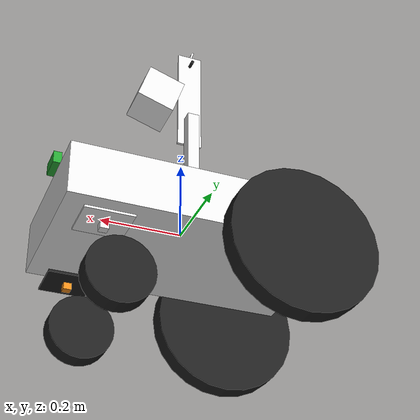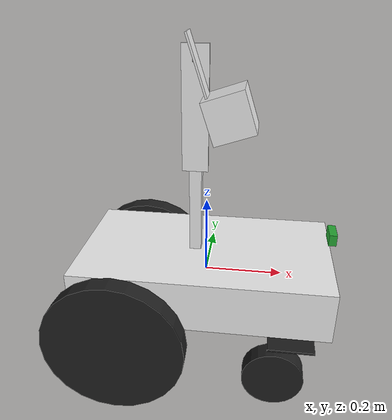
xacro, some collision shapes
<?xml version="1.0"?>

<!--defining a namespace and the robot name are mandatory-->
<robot name="Jimmy" xmlns:xacro="jimmy_description_xacro_namespace">

  <!--====================PART #0 - IMPORT FROM OTHER FILES==================-->
  <!-- Import Rviz colors -->
  <xacro:include filename="$(find jimmy_description)/urdf/materials.xacro" />

  <!-- Import all Gazebo related items from jimmy.gazebo file -->
  <xacro:include filename="$(find jimmy_description)/urdf/jimmy.gazebo" />
  <!--==============END of PART #0 - IMPORT FROM OTHER FILES=================-->

  <!--=========================PART #1 - CONSTANTS===========================-->
  <!-- all the robot constants are defined in this section. Values are meters-->
  <xacro:property name="pi" value="3.1415926535897931" />

  <!--base link values-->
  <xacro:property name="base_link_length_width_height" value="0.650 0.381 0.132" />
  <xacro:property name="base_link_length" value="0.650" />
  <xacro:property name="base_link_width" value="0.381" />
  <xacro:property name="base_link_height" value="0.132" />
  <xacro:property name="base_link_mass" value="25"/> <!--25 kg-->

  <!--left and right drive wheel values (both are same size)-->
  <xacro:property name="drive_wheel_length" value="0.049" />
  <xacro:property name="drive_wheel_radius" value="0.181" />
  <xacro:property name="drive_wheel_mass" value="2"/> <!--2 kg-->

  <!--left and right castor mount plate size (both are same size)-->
  <xacro:property name="castor_mount_link_length_width_height" value="0.1145 0.10 0.0057" />
  <xacro:property name="castor_mount_link_length" value="0.1145" />
  <xacro:property name="castor_mount_link_width" value="0.10" />
  <xacro:property name="castor_mount_link_height" value="0.0057" />
  <xacro:property name="castor_mount_link_mass" value="0.25"/> <!--0.25 kg-->

  <!--dummy link to give castors rotation about the Z axis-->
  <xacro:property name="castor_mount_dummy_link_length" value="0.02" />
  <xacro:property name="castor_mount_dummy_link_width" value="0.02" />
  <xacro:property name="castor_mount_dummy_link_height" value="0.02" />
  <xacro:property name="castor_mount_dummy_link_mass" value="2.0"/> <!--0.25 kg-->

  <!-- left and right castor wheels (both are same size) -->
  <xacro:property name="castor_wheel_length" value="0.049" />
  <xacro:property name="castor_wheel_radius" value="0.07925" />
  <xacro:property name="castor_wheel_mass" value="2"/> <!--2 kg-->

  <!--The dimensions of the aluminum extrusion holding the entire lms system -->
  <xacro:property name="lms_structural_extrusion_link_length_width_height" value="0.03 0.03 0.425" />
  <xacro:property name="lms_structural_extrusion_link_length" value="0.03" />
  <xacro:property name="lms_structural_extrusion_link_width" value="0.03" />
  <xacro:property name="lms_structural_extrusion_link_height" value="0.425" />
  <xacro:property name="lms_structural_extrusion_link_mass" value="3"/> <!--3 kg-->

  <!-- Hokuyo base plate (mounts to lms_structural_extrution, has stepper motor,
       and the limit switch)-->
  <xacro:property name="hokuyo_base_plate_link_length" value="0.0635" /> <!--meters-->
  <xacro:property name="hokuyo_base_plate_link_width" value="0.00635" />
  <xacro:property name="hokuyo_base_plate_link_height" value="0.2921" />
  <xacro:property name="hokuyo_base_plate_link_mass" value="1"/> <!--3 kg-->

  <!-- To make everything easier I am including the stepper motor shaft-->
  <!--dimensions of shaft which is tuned by A.M.P. servo motor               -->
  <xacro:property name="stepper_motor_shaft_length" value="0.05" /> <!--5cm-->
  <xacro:property name="stepper_motor_shaft_radius" value="0.004" /> <!--8mm-->
  <xacro:property name="stepper_motor_shaft_mass" value="0.25"/> <!-- kg-->

  <!-- The hokuyo lidar is mounted to this plate. This plate is moved by
       the stepper motor.-->
  <xacro:property name="hokuyo_nodding_link_length" value="0.217" /> <!--meters-->
  <xacro:property name="hokuyo_nodding_link_width" value="0.051" />
  <xacro:property name="hokuyo_nodding_link_height" value="0.0047625" />
  <xacro:property name="hokuyo_nodding_link_mass" value="0.5"/> <!--kg-->

  <!--Box representing a collision space for the actual Hokuyo. according to    -->
  <!--docs, using meshes for collisions is very computationally intensive, so-->
  <!--it is much better to define collision space as a regular box.          -->
  <xacro:property name="hokuyo_collision_space_length_width_height" value="0.10 0.10 0.10" />

  <!--define some camera properties-->
  <xacro:property name="camera_link_length" value="0.02"/> <!--longest edge-->
  <xacro:property name="camera_link_height" value="0.03"/> <!--second longest edge-->
  <xacro:property name="camera_link_width" value="0.06"/> <!--smallest edge-->
  <xacro:property name="camera_link_mass" value="0.1"/>

  <!--Friction for joints-->
  <xacro:property name="friction_val" value="0.35"/>

  <!--======================END ofPART #1 - CONSTANTS========================-->

  <!--============================PART #2 - MACROS===========================-->
  <!-- This section contains macros for the two types of links I use, namely -->
  <!-- box and cylinder. I do not use any spere shapes.                      -->

  <!--&&&&&&&&&&&&&&&&&&&&&&&&&&&&&&&& BOX &&&&&&&&&&&&&&&&&&&&&&&&&&&&&&&&&&-->
  <!-- This macro defines a box link. This makes creating a box link much    -->
  <!-- easier and cleaner. The parameters are as follows:                    -->
  <!-- link_name - the string that represents the link                       -->
  <!-- length_width_height - this is the length, width and height in meters  -->
  <!-- *origin - this is the rpy - the roll, pitch and yaw. This allows us   -->
  <!--           to rotate the item about all 3 axis (in radians). It is     -->
  <!--           also the xyz, which allows us to move the item along all 3  -->
  <!--           axis from a reference point. We type this line directly in  -->
  <!--           rather then defining 6 seperate constants per cylinder!     -->
  <!-- material - this is the rviz color of the item                         -->
  <!-- mass - this is the kg value of the item (estimated) to make gazebo    -->
  <!--        happy                                                          -->
  <xacro:macro name="box_link" params="link_name length width height material mass *origin">
    <link name="${link_name}_link">
      <collision>
        <geometry>
          <box size="${length} ${width} ${height}"/>
        </geometry>
        <xacro:insert_block name="origin" />
      </collision>

      <visual>
        <geometry>
          <!--box dimensions is Meters. L X W X H where the L X H is a ractange,
              and the H extrudes it upwards -->
          <box size="${length} ${width} ${height}"/>
        </geometry>
        <xacro:insert_block name="origin" />
        <material name="${material}"/>
      </visual>

      <inertial>
        <xacro:insert_block name="origin" />
        <!--all blocks now need a 'mass' argument-->
        <mass value="${mass}"/>
        <!--This is the 3x3 inertial matrix. See: https://wiki.ros.org/urdf/XML/link -->
        <!--where x=length; y=width; z=height. these lines of code came from
        Emiliano Borghi's project-->
        <inertia
          ixx="${mass*(width*width+height*height)/12}"
    	  ixy = "0"
    	  ixz = "0"
    	  iyy="${mass*(length*length+height*height)/12}"
    	  iyz = "0"
    	  izz="${mass*(length*length+height*height)/12}"/>
      </inertial>

    </link>
  </xacro:macro>

  <!--&&&&&&&&&&&&&&&&&&&&&&&&&&&&&&& CYLINDER &&&&&&&&&&&&&&&&&&&&&&&&&&&&&&-->
  <!-- This macro defines a cylinder link. This makes creating a box link    -->
  <!-- much easier and cleaner. The parameters are as follows:               -->
  <!-- link_name - the string that represents the link                       -->
  <!-- length - this is the length of the cylinder in meters                 -->
  <!-- radius - the radius of the cylinder in meters                         -->
  <!-- *origin - this is the rpy - the roll, pitch and yaw. This allows us   -->
  <!--           to rotate the item about all 3 axis (in radians). It is     -->
  <!--           also the xyz, which allows us to move the item along all 3  -->
  <!--           axis from a reference point. We type this line directly in  -->
  <!--           rather then defining 6 seperate constants per cylinder!     -->
  <!-- material - this is the rviz color of the item                         -->
  <!-- mass - this is the kg value of the item (estimated) to make gazebo    -->
  <!--        happy                                                          -->
  <!-- NOTE: the astrix means that you have to physically type the line as an-->
  <!--       argument when using (as well as insering a xacro:insert_block...-->
  <!--       See: https://wiki.ros.org/urdf/Tutorials/Using%20Xacro%20to%20Clean%20Up%20a%20URDF%20File#Parameterized_Macro -->
  <xacro:macro name="cylinder_link" params="link_name length radius material mass *origin">
    <link name="${link_name}_link">
      <collision>
        <geometry>
          <cylinder length="${length}" radius="${radius}"/>
        </geometry>
        <xacro:insert_block name="origin" />
      </collision>

      <visual>
        <geometry>
          <cylinder length="${length}" radius="${radius}"/>
        </geometry>
        <xacro:insert_block name="origin" />
        <material name="${material}"/>
      </visual>

      <!--TODO-->
      <inertial>
        <xacro:insert_block name="origin" />
        <!--all blocks now need a 'mass' argument-->
        <mass value="${mass}"/>

        <!--This is the 3x3 inertial matrix. See: https://wiki.ros.org/urdf/XML/link -->
        <!--These lines of code came from Emiliano Borghi's project-->
        <inertia
          ixx="${mass*(3*radius*radius+length*length)/12}"
    	  ixy = "0"
    	  ixz = "0"
    	  iyy="${mass*(3*radius*radius+length*length)/12}"
    	  iyz = "0"
    	  izz="${mass*radius*radius/2}"
        />
      </inertial>

    </link>
  </xacro:macro>

  <!--&&&&&&&&&&&&&&&&&&&&&&&& CONTINUOUS JOINT &&&&&&&&&&&&&&&&&&&&&&&&&&&&&-->
  <!-- This macro defines a continuous joint. This makes creating a          -->
  <!-- continuous joint much easier and cleaner. The parameters are as       -->
  <!-- follows:                                                              -->
  <!-- name - the string that represents the joint                           -->
  <!-- rpy - the roll, pitch and yaw. This is always 0 0 0                   -->
  <!-- xyz - this defines the axis around which the continuous joint will    -->
  <!--       roll around.                                                    -->
  <!-- parent - this is the parent link to which the child will connect      -->
  <!-- child - this is the child link                                        -->
  <!-- *origin - this is the rpy and xyz point at which the child connects to-->
  <!--           the parent. this is entered as a block. everything is in    -->
  <!--           meters and radians                                          -->
  <!-- NOTE: the astrix means that you have to physically type the line as an-->
  <!--       argument when using (as well as insering a xacro:insert_block...-->
  <!--       See: https://wiki.ros.org/urdf/Tutorials/Using%20Xacro%20to%20Clean%20Up%20a%20URDF%20File#Parameterized_Macro -->
  <xacro:macro name="continuous_joint" params="name rpy xyz parent child friction *origin">
    <joint name="${name}_joint" type="continuous">
      <axis rpy="${rpy}" xyz="${xyz}"/>
      <parent link="${parent}_link"/>
      <child link="${child}_link"/>
      <!-- this is the point at which the two parts attach to one another    -->
      <xacro:insert_block name="origin" />
      <!--This introduces friction so that continious joints don't spin indefinitly
      damping is only used in Gazebo4 and earlier.... -->
      <dynamics damping="0.0" friction="${friction}"/>
    </joint>
  </xacro:macro>

  <!--&&&&&&&&&&&&&&&&&&&&&&&&&&&&& FIXED JOINT &&&&&&&&&&&&&&&&&&&&&&&&&&&&&-->
  <!-- This macro defines a continuous joint. This makes creating a          -->
  <!-- continuous joint much easier and cleaner. The parameters are as       -->
  <!-- follows:                                                              -->
  <!-- name - the string that represents the joint                           -->
  <!-- parent - this is the parent link to which the child will connect      -->
  <!-- child - this is the child link                                        -->
  <!-- *origin - this is the rpy and xyz point at which the child connects to-->
  <!--           the parent. this is entered as a block. everything is in    -->
  <!--           meters and radians                                          -->
  <!-- NOTE: the astrix means that you have to physically type the line as an-->
  <!--       argument when using (as well as insering a xacro:insert_block...-->
  <!--       See: https://wiki.ros.org/urdf/Tutorials/Using%20Xacro%20to%20Clean%20Up%20a%20URDF%20File#Parameterized_Macro -->
  <xacro:macro name="fixed_joint" params="name parent child *origin">
    <joint name="${name}_joint" type="fixed">
      <parent link="${parent}_link"/>
      <child link="${child}_link"/>
      <!-- this is the point at which the two parts attach to one another    -->
      <xacro:insert_block name="origin" />
    </joint>
  </xacro:macro>
  <!--======================END ofPART #2 - MACROS===========================-->

  <!--===================PART #3 - LINK & JOINT DEFINITIONS==================-->

  <!-- all the robot constants are defined in this section. Values are meters-->
  <!--base_link is the parent link onto which all other links join to -->
  <xacro:box_link link_name="base" length="${base_link_length}"
                                   width="${base_link_width}"
                                   height="${base_link_height}" material="white" mass="${base_link_mass}">
    <!--origin rpy="0 0 0" xyz="-0.325 -0.1905 0.066"/-->
    <origin rpy="0 0 0" xyz="0.0 0.0 0.0"/>
  </xacro:box_link>

  <!--TEST====================================================================================-->

  <!--This is the camera link. I mounted a usb camera on the front of the second level -->
  <xacro:box_link link_name="camera" length="${camera_link_length}"
                                   width="${camera_link_width}"
                                   height="${camera_link_height}" material="green" mass="${camera_link_mass}">
    <origin rpy="0 0 0" xyz="0 0 0"/>
  </xacro:box_link>

     <!-- Attach camera link to base link-->
  <xacro:fixed_joint name="base_to_camera_" parent="base" child="camera">

    <origin xyz="0.325 0.0355 0.104"/>
  </xacro:fixed_joint>

  <!--left_drive_wheel_link is a well named link :-) -->
  <xacro:cylinder_link link_name="left_drive_wheel"
                       length="${drive_wheel_length}"
                       radius="${drive_wheel_radius}"
                       material="black" mass="${drive_wheel_mass}">
    <origin xyz="0 0 0" rpy="${pi/2} 0 0"/>
  </xacro:cylinder_link>

  <xacro:continuous_joint name="base_to_left_drive_wheel"
                          rpy="0 0 0" xyz="0 1 0"
                          parent="base" child="left_drive_wheel"
                          friction="${friction_val}">

    <origin xyz="-0.20335 0.2275 -0.101"/>
  </xacro:continuous_joint>

  <!--right_drive_wheel_link is a well named link :-) -->
  <xacro:cylinder_link link_name="right_drive_wheel"
                       length="${drive_wheel_length}" radius="${drive_wheel_radius}"
                       material="black" mass="${drive_wheel_mass}">
    <origin xyz="0 0 0" rpy="${pi/2} 0 0"/>
  </xacro:cylinder_link>

  <xacro:continuous_joint name="base_to_right_drive_wheel"
                          rpy="0 0 0" xyz="0 1 0"
                          parent="base" child="right_drive_wheel"
                          friction="${friction_val}">
    <origin xyz="-0.20335 -0.2305 -0.101"/>
  </xacro:continuous_joint>

  <!--+++++++++++++++++++++++++++++++++++LEFT CASTOR+++++++++++++++++++++++++++++++++++++++++++++++++++-->
  <!--left_caster_mount -->
  <xacro:box_link link_name="left_castor_mount" length="${castor_mount_link_length}"
                                                width="${castor_mount_link_width}"
                                                height="${castor_mount_link_height}" material="white"
                                                mass="${castor_mount_link_mass}">
    <origin xyz="0 0 0" rpy="0 0 0" />
  </xacro:box_link>

   <!--joint-->
  <xacro:fixed_joint name="base_to_left_castor_mount" parent="base" child="left_castor_mount">
    <origin xyz="0.23055 0.1495 -0.09865"/>
  </xacro:fixed_joint>

  <!--left_caster_dummy to give the castor wheel rotation about the Z axis -->
  <xacro:box_link link_name="left_castor_dummy" length="${castor_mount_dummy_link_length}"
                                                width="${castor_mount_dummy_link_width}"
                                                height="${castor_mount_dummy_link_height}" material="white"
                                                mass="${castor_mount_dummy_link_mass}">
    <origin xyz="0 0 0" rpy="0 0 0" />
  </xacro:box_link>

  <!--joint between left castor mount and dummy link to allow rotation of castor wheel about z axis-->
  <xacro:continuous_joint name="left_castor_mount_to_left_castor_dummy" rpy="0 0 0" xyz="0 0 1"
                          parent="left_castor_mount" child="left_castor_dummy" friction="${friction_val}">
    <origin xyz="0.0 0.0 -0.01"/>
  </xacro:continuous_joint>

  <!--left_castor_wheel_link is a well named link :-) -->
  <xacro:cylinder_link link_name="left_castor_wheel"
                       length="${castor_wheel_length}" radius="${castor_wheel_radius}"
                       material="Black" mass="${castor_wheel_mass}">
    <origin xyz="0 0 0" rpy="${pi/2} 0 0"/>
  </xacro:cylinder_link>

  <xacro:continuous_joint name="left_castor_dummy_to_left_castor_wheel" rpy="0 0 0" xyz="0 1 0"
                          parent="left_castor_dummy" child="left_castor_wheel" friction="${friction_val}">
    <origin xyz="-0.037 0.0 -0.10785"/>
  </xacro:continuous_joint>

  <!--+++++++++++++++++++++++++++++++++++RIGHT CASTOR+++++++++++++++++++++++++++++++++++++++++++++++++++-->

  <!--right_caster_plate_link is a well named link :-) -->
  <xacro:box_link link_name="right_castor_mount" length="${castor_mount_link_length}"
                                                 width="${castor_mount_link_width}"
                                                 height="${castor_mount_link_height}" material="black"
                                                 mass="${castor_mount_link_mass}">
    <origin xyz="0 0 0" rpy="0 0 0" />
  </xacro:box_link>

  <xacro:fixed_joint name="base_to_right_castor_mount" parent="base" child="right_castor_mount">
    <origin xyz="0.23055 -0.1535 -0.0965"/>
  </xacro:fixed_joint>

  <!--right_caster_dummy to give the castor wheel rotation about the Z axis -->
  <xacro:box_link link_name="right_castor_dummy" length="${castor_mount_dummy_link_length}"
                                                 width="${castor_mount_dummy_link_width}"
                                                 height="${castor_mount_dummy_link_height}" material="orange"
                                                 mass="${castor_mount_dummy_link_mass}">
    <origin xyz="0 0 0" rpy="0 0 0" />
  </xacro:box_link>

  <!--joint between right castor mount and dummy link to allow rotation of castor wheel about z axis-->
  <xacro:continuous_joint name="right_castor_mount_to_right_castor_dummy" rpy="0 0 0" xyz="0 0 1"
                          parent="right_castor_mount" child="right_castor_dummy" friction="${friction_val}">
    <origin xyz="0.0 0.0  -0.01"/>
  </xacro:continuous_joint>

  <!--right_castor_wheel_link is a well named link :-) -->
  <xacro:cylinder_link link_name="right_castor_wheel" length="${castor_wheel_length}" radius="${castor_wheel_radius}"
                       material="Black" mass="${castor_wheel_mass}">
    <origin xyz="0 0 0" rpy="${pi/2} 0 0"/>
  </xacro:cylinder_link>

  <xacro:continuous_joint name="right_castor_dummy_to_right_castor_wheel" rpy="0 0 0" xyz="0 1 0"
                          parent="right_castor_dummy" child="right_castor_wheel" friction="${friction_val}">
    <origin xyz="-0.037 0 -0.10785"/>
  </xacro:continuous_joint>

  <!--lms_structrual_extrusion is the aluminum extrusion that is supporting   -->
  <!-- the entire LMS structure. I put it here for aestetics.                -->
  <xacro:box_link link_name="lms_structural_extrusion" length="${lms_structural_extrusion_link_length}"
                                                      width="${lms_structural_extrusion_link_width}"
                                                      height="${lms_structural_extrusion_link_height}"
                                                      material="white" mass="${lms_structural_extrusion_link_mass}">
    <origin xyz="0 0 0" rpy="0 0 0" />
  </xacro:box_link>

  <xacro:fixed_joint name="base_link_to_lms_structural_extrusion"
                     parent="base" child="lms_structural_extrusion">
    <origin xyz="-0.0281 0.0 0.1513"/>
  </xacro:fixed_joint>

  <!-- ==============================HOKUYO MODS (LMS DELETE)========================================-->

  <!-- The 1/4 inch plate that mounts to the extrusion, holds the stepper motor,
       and ofcourse the nodding platform on which the Hokuyo is mounted onto -->
  <xacro:box_link link_name="hokuyo_base_plate" length="${hokuyo_base_plate_link_length}"
                                                width="${hokuyo_base_plate_link_width}"
                                                height="${hokuyo_base_plate_link_height}"
                                                material="white"
                                                mass="${hokuyo_base_plate_link_mass}">
    <origin xyz="0 0 0" rpy="0 0 0" />
  </xacro:box_link>

   <!-- joint between hokuyo base plate link and the aluminum extrusion that is connected to the base_link frame-->
  <xacro:fixed_joint name="structural_extrusion_to_hokuyo_base_plate" parent="lms_structural_extrusion"
                                                                    child="hokuyo_base_plate">
    <origin xyz="0.0 -0.018175 0.27955"/>
  </xacro:fixed_joint>

  <!--stepper motor shaft. -->
  <xacro:cylinder_link link_name="hokuyo_stepper_motor_shaft" length="${stepper_motor_shaft_length}"
                       radius="${stepper_motor_shaft_radius}" material="black" mass="${stepper_motor_shaft_mass}">
    <origin xyz="0 0 0" rpy="${pi/2} 0 0"/>
  </xacro:cylinder_link>

  <!-- This joint attaches the stepper motor shaft to the hokuyo_base_plate -->
  <xacro:continuous_joint name="hokuyo_stepper_shaft_to_hokuyo_base_plate" rpy="0 0 0" xyz="0 1 0"
                          parent="hokuyo_base_plate" child="hokuyo_stepper_motor_shaft" friction="${friction_val}">
    <!--the rpy is needed to put the lidar at the limit switch position when
        gazebo fires up."/-->
	<origin xyz="0.0 0.0 0.11405" rpy="0.0 1.25 0.0"/>
  </xacro:continuous_joint>

  <!-- The 3/8 plate on which the lidar is mounted that the stepper motor nods -->
  <xacro:box_link link_name="hokuyo_nodding_plate" length="${hokuyo_nodding_link_length}"
                                                   width="${hokuyo_nodding_link_width}"
                                                   height="${hokuyo_nodding_link_height}"
                                                   material="white"
                                                   mass="${hokuyo_nodding_link_mass}">
    <origin xyz="0 0 0" rpy="0 0 0" />
  </xacro:box_link>

  <!-- joint between stepper motor shaft and the nodding plate that holds the Hokuyo-->
  <xacro:fixed_joint name="hokuyo_nodding_plate_to_stepper_shaft" parent="hokuyo_stepper_motor_shaft"
                                                                    child="hokuyo_nodding_plate">
    <origin xyz="0.047625 -0.0321469 0.00638125"/>
  </xacro:fixed_joint>

  <!--========SPECIAL CASES for LINK & JOINT DEFINITIONS=====================-->
  <!-- This area contains one offs, such as a link with meshes, a links that -->
  <!-- anchor the laser (point in space from which all /scan topic data is   -->
  <!-- refrenced), and I think thats it. But basically a bunch of non xacro  -->
  <!-- code (even though where I can, I still use xacro. Ex: joints).        -->

  <!-- Connect the Hokuyo mesh to the aluminum plate on which it sits.       -->

  <joint name="hokuyo_nodding_plate_to_laser" type="fixed">
	<!--axis tag is not used according to: https://wiki.ros.org/urdf/XML/joint -->
    <!--axis xyz="0 0 0" /-->
	<!--relationship of child link to parent link. This is doing the laser rendering
        in rviz, not the mesh.-->
    <origin xyz="0.0825 0.0 0.0378" rpy="0.0 0.0 0.0"/> <!--TODO-->
    <parent link="hokuyo_nodding_plate_link"/>
    <child link="laser"/>
  </joint>

  <!-- this link is the actual LMS, and is rendered by importing a mesh file.-->
  <!-- This link definition is not using any macros as there is only one type-->
  <!-- of this link. No need to automate it.                                 -->
  <link name="laser">
    <collision>
      <origin rpy="0 0 0" xyz="0 0 0"/>
	  <geometry>
        <box size="${hokuyo_collision_space_length_width_height}"/>
      </geometry>

    </collision>

    <visual>
      <geometry>
        <mesh filename="package://jimmy_description/meshes/hokuyo.dae" scale="0.999 0.999 0.999"/> <!--TODO-->
      </geometry>
	  <!--This is responsible for rendering the mesh on the lms plate-->
      <origin rpy="0.0 0.0 0.0" xyz="0.0 0.0 0.0"/> <!--TODO-->
      <material name="white"/>
    </visual>

    <inertial>
      <origin rpy="0 0 0" xyz="0 0 0"/>
      <!--mass is the kg value of the link-->
      <mass value="0.5"/>
      <!--3x3 inertia matrix. See: https://wiki.ros.org/urdf/XML/link
      the values are copy pasted from: http://gazebosim.org/tutorials/?tut=ros_urdf-->
      <inertia
        ixx="1.0" ixy="0.0" ixz="0.0"
        iyy="1.0" iyz="0.0"
        izz="1.0"/>
    </inertial>
  </link>

  <!--Here I am trying to implement this answer:                             -->
  <!--https://answers.ros.org/question/274774/how-to-merge-laser-tf-with-other-tf-frames/-->
  <!--The "laser" link is the way to represent the laser producing object in -->
  <!--the URDF file.                                                         -->

  <!--This is the joint between the "laser" link and the lms mesh This is    -->
  <!--where I would raise the laser and tilt it a smidge (as in RVIZ it      -->
  <!--doesn't look quite spot on...). I did not use a xacro for the fixed    -->
  <!--joint as it would append the "laser" link to "laser_link" and I think  -->
  <!--"laser" is a key word.                                                 -->

  <!--===============END OF PART #3 - LINK & JOINT DEFINITIONS===============-->
</robot>
